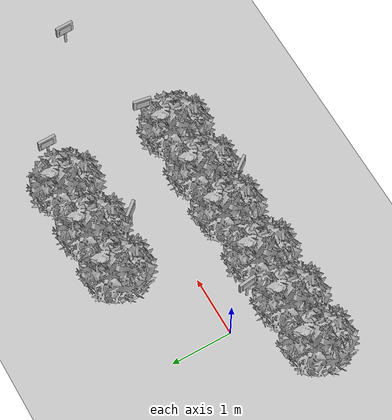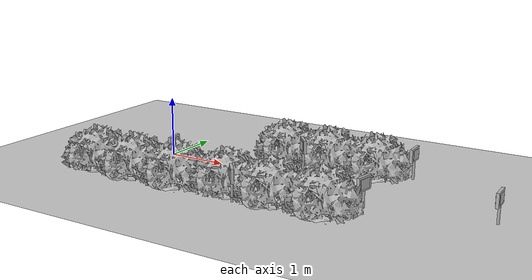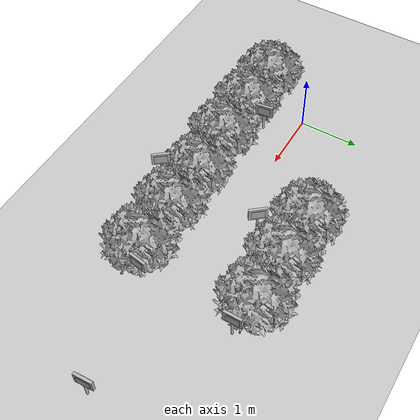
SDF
<sdf version="1.7">
 <world name="default">
  <model name="ground_plane">
   <static>1</static>
   <link name="link">
    <collision name="collision">
     <geometry><plane><normal>0 0 1</normal><size>100 100</size></plane></geometry>
     <surface><friction><ode><mu>100</mu><mu2>50</mu2></ode></friction></surface>
    </collision>
    <visual name="visual">
     <cast_shadows>0</cast_shadows>
     <geometry><plane><normal>0 0 1</normal><size>100 100</size></plane></geometry>
     <material>
      <script><uri>file://media/materials/scripts/gazebo.material</uri><name>Gazebo/Grey</name></script>
     </material>
    </visual>
   </link>
  </model>
  <model name="abbfre_0">
   <link name="link_0">
    <inertial>
     <mass>1</mass>
     <inertia>
      <ixx>0.166667</ixx>
      <ixy>0</ixy>
      <ixz>0</ixz>
      <iyy>0.166667</iyy>
      <iyz>0</iyz>
      <izz>0.166667</izz>
     </inertia>
    </inertial>
    <pose>0 0 -0 1.60917 -0 0</pose>
    <visual name="visual">
     <geometry><mesh><uri>model://abbfre/meshes/arbufres.obj</uri><scale>1 1 1</scale></mesh></geometry>
    </visual>
    <collision name="collision">
     <geometry><mesh><uri>model://abbfre/meshes/arbufres.obj</uri><scale>1 1 1</scale></mesh></geometry>
     <surface>
      <friction>
       <ode><mu>1</mu><mu2>1</mu2><fdir1>0 0 0</fdir1><slip1>0</slip1><slip2>0</slip2></ode>
       <torsional>
        <coefficient>1</coefficient>
        <patch_radius>0</patch_radius>
        <surface_radius>0</surface_radius>
        <use_patch_radius>1</use_patch_radius>
        <ode><slip>0</slip></ode>
       </torsional>
      </friction>
      <bounce><restitution_coefficient>0</restitution_coefficient><threshold>1e+06</threshold></bounce>
      <contact>
       <collide_without_contact>0</collide_without_contact>
       <collide_without_contact_bitmask>1</collide_without_contact_bitmask>
       <collide_bitmask>1</collide_bitmask>
       <ode>
        <soft_cfm>0</soft_cfm>
        <soft_erp>0.2</soft_erp>
        <kp>1e+13</kp>
        <kd>1</kd>
        <max_vel>0.01</max_vel>
        <min_depth>0</min_depth>
       </ode>
       <bullet>
        <split_impulse>1</split_impulse>
        <split_impulse_penetration_threshold>-0.01</split_impulse_penetration_threshold>
        <soft_cfm>0</soft_cfm>
        <soft_erp>0.2</soft_erp>
        <kp>1e+13</kp>
        <kd>1</kd>
       </bullet>
      </contact>
     </surface>
    </collision>
   </link>
   <static>1</static>
   <pose>2.57031 1.10101 0 0 -0 0</pose>
  </model>
  <model name="abbfre_2">
   <link name="link_0">
    <inertial>
     <mass>1</mass>
     <inertia>
      <ixx>0.166667</ixx>
      <ixy>0</ixy>
      <ixz>0</ixz>
      <iyy>0.166667</iyy>
      <iyz>0</iyz>
      <izz>0.166667</izz>
     </inertia>
    </inertial>
    <pose>0 0 -0 1.60917 -0 0</pose>
    <visual name="visual">
     <geometry><mesh><uri>model://abbfre/meshes/arbufres.obj</uri><scale>1 1 1</scale></mesh></geometry>
    </visual>
    <collision name="collision">
     <geometry><mesh><uri>model://abbfre/meshes/arbufres.obj</uri><scale>1 1 1</scale></mesh></geometry>
     <surface>
      <friction>
       <ode><mu>1</mu><mu2>1</mu2><fdir1>0 0 0</fdir1><slip1>0</slip1><slip2>0</slip2></ode>
       <torsional>
        <coefficient>1</coefficient>
        <patch_radius>0</patch_radius>
        <surface_radius>0</surface_radius>
        <use_patch_radius>1</use_patch_radius>
        <ode><slip>0</slip></ode>
       </torsional>
      </friction>
      <bounce><restitution_coefficient>0</restitution_coefficient><threshold>1e+06</threshold></bounce>
      <contact>
       <collide_without_contact>0</collide_without_contact>
       <collide_without_contact_bitmask>1</collide_without_contact_bitmask>
       <collide_bitmask>1</collide_bitmask>
       <ode>
        <soft_cfm>0</soft_cfm>
        <soft_erp>0.2</soft_erp>
        <kp>1e+13</kp>
        <kd>1</kd>
        <max_vel>0.01</max_vel>
        <min_depth>0</min_depth>
       </ode>
       <bullet>
        <split_impulse>1</split_impulse>
        <split_impulse_penetration_threshold>-0.01</split_impulse_penetration_threshold>
        <soft_cfm>0</soft_cfm>
        <soft_erp>0.2</soft_erp>
        <kp>1e+13</kp>
        <kd>1</kd>
       </bullet>
      </contact>
     </surface>
    </collision>
   </link>
   <static>1</static>
   <pose>0.065433 -0.946013 0 0 -0 0</pose>
  </model>
  <model name="abbfre_4">
   <link name="link_0">
    <inertial>
     <mass>1</mass>
     <inertia>
      <ixx>0.166667</ixx>
      <ixy>0</ixy>
      <ixz>0</ixz>
      <iyy>0.166667</iyy>
      <iyz>0</iyz>
      <izz>0.166667</izz>
     </inertia>
    </inertial>
    <pose>0 0 -0 1.60917 -0 0</pose>
    <visual name="visual">
     <geometry><mesh><uri>model://abbfre/meshes/arbufres.obj</uri><scale>1 1 1</scale></mesh></geometry>
    </visual>
    <collision name="collision">
     <geometry><mesh><uri>model://abbfre/meshes/arbufres.obj</uri><scale>1 1 1</scale></mesh></geometry>
     <surface>
      <friction>
       <ode><mu>1</mu><mu2>1</mu2><fdir1>0 0 0</fdir1><slip1>0</slip1><slip2>0</slip2></ode>
       <torsional>
        <coefficient>1</coefficient>
        <patch_radius>0</patch_radius>
        <surface_radius>0</surface_radius>
        <use_patch_radius>1</use_patch_radius>
        <ode><slip>0</slip></ode>
       </torsional>
      </friction>
      <bounce><restitution_coefficient>0</restitution_coefficient><threshold>1e+06</threshold></bounce>
      <contact>
       <collide_without_contact>0</collide_without_contact>
       <collide_without_contact_bitmask>1</collide_without_contact_bitmask>
       <collide_bitmask>1</collide_bitmask>
       <ode>
        <soft_cfm>0</soft_cfm>
        <soft_erp>0.2</soft_erp>
        <kp>1e+13</kp>
        <kd>1</kd>
        <max_vel>0.01</max_vel>
        <min_depth>0</min_depth>
       </ode>
       <bullet>
        <split_impulse>1</split_impulse>
        <split_impulse_penetration_threshold>-0.01</split_impulse_penetration_threshold>
        <soft_cfm>0</soft_cfm>
        <soft_erp>0.2</soft_erp>
        <kp>1e+13</kp>
        <kd>1</kd>
       </bullet>
      </contact>
     </surface>
    </collision>
   </link>
   <static>1</static>
   <pose>2.62048 -0.87774 0 0 -0 0</pose>
  </model>
  <model name="letrero_riego">
   <link name="link_0">
    <inertial>
     <mass>0.0543151</mass>
     <inertia>
      <ixx>4.90351e-06</ixx>
      <ixy>0</ixy>
      <ixz>0</ixz>
      <iyy>4.90351e-06</iyy>
      <iyz>0</iyz>
      <izz>1.12837e-07</izz>
     </inertia>
    </inertial>
    <pose>0.002515 0.005109 0.153562 0 -0 0</pose>
    <visual name="visual">
     <geometry><cylinder><radius>0.0203836</radius><length>0.327243</length></cylinder></geometry>
     <material>
      <lighting>1</lighting>
      <script>
       <uri>model://letrero_riego/madera/scripts</uri>
       <uri>model://letrero_riego/madera/textures</uri>
       <name>textur/madera</name>
      </script>
      <shader type="pixel"/>
      <emissive>0 0 0 1</emissive>
     </material>
    </visual>
    <collision name="collision">
     <geometry><cylinder><radius>0.020384</radius><length>0.327243</length></cylinder></geometry>
     <surface>
      <friction>
       <ode><mu>1</mu><mu2>1</mu2><fdir1>0 0 0</fdir1><slip1>0</slip1><slip2>0</slip2></ode>
       <torsional>
        <coefficient>1</coefficient>
        <patch_radius>0</patch_radius>
        <surface_radius>0</surface_radius>
        <use_patch_radius>1</use_patch_radius>
        <ode><slip>0</slip></ode>
       </torsional>
      </friction>
      <bounce><restitution_coefficient>0</restitution_coefficient><threshold>1e+06</threshold></bounce>
      <contact>
       <collide_without_contact>0</collide_without_contact>
       <collide_without_contact_bitmask>1</collide_without_contact_bitmask>
       <collide_bitmask>1</collide_bitmask>
       <ode>
        <soft_cfm>0</soft_cfm>
        <soft_erp>0.2</soft_erp>
        <kp>1e+13</kp>
        <kd>1</kd>
        <max_vel>0.01</max_vel>
        <min_depth>0</min_depth>
       </ode>
       <bullet>
        <split_impulse>1</split_impulse>
        <split_impulse_penetration_threshold>-0.01</split_impulse_penetration_threshold>
        <soft_cfm>0</soft_cfm>
        <soft_erp>0.2</soft_erp>
        <kp>1e+13</kp>
        <kd>1</kd>
       </bullet>
      </contact>
     </surface>
    </collision>
   </link>
   <link name="link_1">
    <inertial>
     <mass>0.00299633</mass>
     <inertia>
      <ixx>1.27855e-05</ixx>
      <ixy>0</ixy>
      <ixz>0</ixz>
      <iyy>3.42923e-05</iyy>
      <iyz>0</iyz>
      <izz>2.25402e-05</izz>
     </inertia>
    </inertial>
    <pose>-0.001542 0.002452 0.422031 0 -0 0</pose>
    <visual name="visual">
     <geometry><box><size>0.296988 0.04549 0.221665</size></box></geometry>
     <material>
      <lighting>1</lighting>
      <script>
       <uri>model://letrero_riego/madera/scripts</uri>
       <uri>model://letrero_riego/madera/textures</uri>
       <name>textur/madera</name>
      </script>
      <shader type="pixel"/>
      <emissive>0 0 0 1</emissive>
     </material>
    </visual>
    <collision name="collision">
     <geometry><box><size>0.296988 0.04549 0.221665</size></box></geometry>
     <surface>
      <friction>
       <ode><mu>1</mu><mu2>1</mu2><fdir1>0 0 0</fdir1><slip1>0</slip1><slip2>0</slip2></ode>
       <torsional>
        <coefficient>1</coefficient>
        <patch_radius>0</patch_radius>
        <surface_radius>0</surface_radius>
        <use_patch_radius>1</use_patch_radius>
        <ode><slip>0</slip></ode>
       </torsional>
      </friction>
      <bounce><restitution_coefficient>0</restitution_coefficient><threshold>1e+06</threshold></bounce>
      <contact>
       <collide_without_contact>0</collide_without_contact>
       <collide_without_contact_bitmask>1</collide_without_contact_bitmask>
       <collide_bitmask>1</collide_bitmask>
       <ode>
        <soft_cfm>0</soft_cfm>
        <soft_erp>0.2</soft_erp>
        <kp>1e+13</kp>
        <kd>1</kd>
        <max_vel>0.01</max_vel>
        <min_depth>0</min_depth>
       </ode>
       <bullet>
        <split_impulse>1</split_impulse>
        <split_impulse_penetration_threshold>-0.01</split_impulse_penetration_threshold>
        <soft_cfm>0</soft_cfm>
        <soft_erp>0.2</soft_erp>
        <kp>1e+13</kp>
        <kd>1</kd>
       </bullet>
      </contact>
     </surface>
    </collision>
   </link>
   <link name="link_2">
    <inertial>
     <mass>0.00173577</mass>
     <inertia>
      <ixx>4.23206e-06</ixx>
      <ixy>0</ixy>
      <ixz>0</ixz>
      <iyy>1.03921e-05</iyy>
      <iyz>0</iyz>
      <izz>7.37287e-06</izz>
     </inertia>
    </inertial>
    <pose>-0.010225 0.002657 0.421501 0 -0 0</pose>
    <visual name="visual">
     <geometry><box><size>0.216284 0.064749 0.15832</size></box></geometry>
     <material>
      <lighting>1</lighting>
      <script>
       <uri>model://letrero_riego/materials/scripts</uri>
       <uri>model://letrero_riego/materials/textures</uri>
       <name>textur/riego</name>
      </script>
      <shader type="pixel"/>
      <emissive>0 0 0 1</emissive>
     </material>
    </visual>
    <collision name="collision">
     <geometry><box><size>0.216284 0.064749 0.15832</size></box></geometry>
     <surface>
      <friction>
       <ode><mu>1</mu><mu2>1</mu2><fdir1>0 0 0</fdir1><slip1>0</slip1><slip2>0</slip2></ode>
       <torsional>
        <coefficient>1</coefficient>
        <patch_radius>0</patch_radius>
        <surface_radius>0</surface_radius>
        <use_patch_radius>1</use_patch_radius>
        <ode><slip>0</slip></ode>
       </torsional>
      </friction>
      <bounce><restitution_coefficient>0</restitution_coefficient><threshold>1e+06</threshold></bounce>
      <contact>
       <collide_without_contact>0</collide_without_contact>
       <collide_without_contact_bitmask>1</collide_without_contact_bitmask>
       <collide_bitmask>1</collide_bitmask>
       <ode>
        <soft_cfm>0</soft_cfm>
        <soft_erp>0.2</soft_erp>
        <kp>1e+13</kp>
        <kd>1</kd>
        <max_vel>0.01</max_vel>
        <min_depth>0</min_depth>
       </ode>
       <bullet>
        <split_impulse>1</split_impulse>
        <split_impulse_penetration_threshold>-0.01</split_impulse_penetration_threshold>
        <soft_cfm>0</soft_cfm>
        <soft_erp>0.2</soft_erp>
        <kp>1e+13</kp>
        <kd>1</kd>
       </bullet>
      </contact>
     </surface>
    </collision>
   </link>
   <joint name="link_0_JOINT_1" type="fixed">
    <parent>link_0</parent>
    <child>link_1</child>
    <physics>
     <ode><limit><cfm>0</cfm><erp>0.2</erp></limit><suspension><cfm>0</cfm><erp>0.2</erp></suspension></ode>
    </physics>
   </joint>
   <joint name="link_0_JOINT_2" type="fixed">
    <parent>link_0</parent>
    <child>link_2</child>
    <physics>
     <ode><limit><cfm>0</cfm><erp>0.2</erp></limit><suspension><cfm>0</cfm><erp>0.2</erp></suspension></ode>
    </physics>
   </joint>
   <static>1</static>
   <pose>3.93018 -0.662808 -0.049872 0 -0 1.41446</pose>
  </model>
  <model name="letrero_fresa">
   <link name="link_0">
    <inertial>
     <mass>0.00543151</mass>
     <inertia>
      <ixx>4.90351e-06</ixx>
      <ixy>0</ixy>
      <ixz>0</ixz>
      <iyy>4.90351e-06</iyy>
      <iyz>0</iyz>
      <izz>1.12837e-07</izz>
     </inertia>
    </inertial>
    <pose>0.002372 -0.000902 -0.178803 0 -0 0</pose>
    <visual name="visual">
     <geometry><cylinder><radius>0.0203836</radius><length>0.327243</length></cylinder></geometry>
     <material>
      <lighting>1</lighting>
      <script>
       <uri>model://letrero_fresa/madera/scripts</uri>
       <uri>model://letrero_fresa/madera/textures</uri>
       <name>textur/madera</name>
      </script>
      <shader type="pixel"/>
      <emissive>0 0 0 1</emissive>
     </material>
    </visual>
    <collision name="collision">
     <geometry><cylinder><radius>0.020384</radius><length>0.327243</length></cylinder></geometry>
     <surface>
      <friction>
       <ode><mu>1</mu><mu2>1</mu2><fdir1>0 0 0</fdir1><slip1>0</slip1><slip2>0</slip2></ode>
       <torsional>
        <coefficient>1</coefficient>
        <patch_radius>0</patch_radius>
        <surface_radius>0</surface_radius>
        <use_patch_radius>1</use_patch_radius>
        <ode><slip>0</slip></ode>
       </torsional>
      </friction>
      <bounce><restitution_coefficient>0</restitution_coefficient><threshold>1e+06</threshold></bounce>
      <contact>
       <collide_without_contact>0</collide_without_contact>
       <collide_without_contact_bitmask>1</collide_without_contact_bitmask>
       <collide_bitmask>1</collide_bitmask>
       <ode>
        <soft_cfm>0</soft_cfm>
        <soft_erp>0.2</soft_erp>
        <kp>1e+13</kp>
        <kd>1</kd>
        <max_vel>0.01</max_vel>
        <min_depth>0</min_depth>
       </ode>
       <bullet>
        <split_impulse>1</split_impulse>
        <split_impulse_penetration_threshold>-0.01</split_impulse_penetration_threshold>
        <soft_cfm>0</soft_cfm>
        <soft_erp>0.2</soft_erp>
        <kp>1e+13</kp>
        <kd>1</kd>
       </bullet>
      </contact>
     </surface>
    </collision>
   </link>
   <link name="link_1">
    <inertial>
     <mass>0.00299633</mass>
     <inertia>
      <ixx>1.27855e-05</ixx>
      <ixy>0</ixy>
      <ixz>0</ixz>
      <iyy>3.42923e-05</iyy>
      <iyz>0</iyz>
      <izz>2.25402e-05</izz>
     </inertia>
    </inertial>
    <pose>-0.001685 -0.003559 0.089666 0 -0 0</pose>
    <visual name="visual">
     <geometry><box><size>0.296988 0.04549 0.221665</size></box></geometry>
     <material>
      <lighting>1</lighting>
      <script>
       <uri>model://letrero_fresa/madera/scripts</uri>
       <uri>model://letrero_fresa/madera/textures</uri>
       <name>textur/madera</name>
      </script>
      <shader type="pixel"/>
      <emissive>0 0 0 1</emissive>
     </material>
    </visual>
    <collision name="collision">
     <geometry><box><size>0.296988 0.04549 0.221665</size></box></geometry>
     <surface>
      <friction>
       <ode><mu>1</mu><mu2>1</mu2><fdir1>0 0 0</fdir1><slip1>0</slip1><slip2>0</slip2></ode>
       <torsional>
        <coefficient>1</coefficient>
        <patch_radius>0</patch_radius>
        <surface_radius>0</surface_radius>
        <use_patch_radius>1</use_patch_radius>
        <ode><slip>0</slip></ode>
       </torsional>
      </friction>
      <bounce><restitution_coefficient>0</restitution_coefficient><threshold>1e+06</threshold></bounce>
      <contact>
       <collide_without_contact>0</collide_without_contact>
       <collide_without_contact_bitmask>1</collide_without_contact_bitmask>
       <collide_bitmask>1</collide_bitmask>
       <ode>
        <soft_cfm>0</soft_cfm>
        <soft_erp>0.2</soft_erp>
        <kp>1e+13</kp>
        <kd>1</kd>
        <max_vel>0.01</max_vel>
        <min_depth>0</min_depth>
       </ode>
       <bullet>
        <split_impulse>1</split_impulse>
        <split_impulse_penetration_threshold>-0.01</split_impulse_penetration_threshold>
        <soft_cfm>0</soft_cfm>
        <soft_erp>0.2</soft_erp>
        <kp>1e+13</kp>
        <kd>1</kd>
       </bullet>
      </contact>
     </surface>
    </collision>
   </link>
   <link name="link_2">
    <inertial>
     <mass>0.00219695</mass>
     <inertia>
      <ixx>5.34209e-06</ixx>
      <ixy>0</ixy>
      <ixz>0</ixz>
      <iyy>1.31531e-05</iyy>
      <iyz>0</iyz>
      <izz>9.31738e-06</izz>
     </inertia>
    </inertial>
    <pose>-0.001275 -0.005928 0.089136 0 -0 0</pose>
    <visual name="visual">
     <geometry><box><size>0.216284 0.06414 0.15832</size></box></geometry>
     <material>
      <lighting>1</lighting>
      <script>
       <uri>model://letrero_fresa/materials/scripts</uri>
       <uri>model://letrero_fresa/materials/textures</uri>
       <name>textur/difre</name>
      </script>
      <shader type="pixel"/>
      <emissive>0 0 0 1</emissive>
     </material>
    </visual>
    <collision name="collision">
     <geometry><box><size>0.216284 0.06414 0.15832</size></box></geometry>
     <surface>
      <friction>
       <ode><mu>1</mu><mu2>1</mu2><fdir1>0 0 0</fdir1><slip1>0</slip1><slip2>0</slip2></ode>
       <torsional>
        <coefficient>1</coefficient>
        <patch_radius>0</patch_radius>
        <surface_radius>0</surface_radius>
        <use_patch_radius>1</use_patch_radius>
        <ode><slip>0</slip></ode>
       </torsional>
      </friction>
      <bounce><restitution_coefficient>0</restitution_coefficient><threshold>1e+06</threshold></bounce>
      <contact>
       <collide_without_contact>0</collide_without_contact>
       <collide_without_contact_bitmask>1</collide_without_contact_bitmask>
       <collide_bitmask>1</collide_bitmask>
       <ode>
        <soft_cfm>0</soft_cfm>
        <soft_erp>0.2</soft_erp>
        <kp>1e+13</kp>
        <kd>1</kd>
        <max_vel>0.01</max_vel>
        <min_depth>0</min_depth>
       </ode>
       <bullet>
        <split_impulse>1</split_impulse>
        <split_impulse_penetration_threshold>-0.01</split_impulse_penetration_threshold>
        <soft_cfm>0</soft_cfm>
        <soft_erp>0.2</soft_erp>
        <kp>1e+13</kp>
        <kd>1</kd>
       </bullet>
      </contact>
     </surface>
    </collision>
   </link>
   <joint name="link_0_JOINT_1" type="fixed">
    <parent>link_0</parent>
    <child>link_1</child>
    <physics>
     <ode><limit><cfm>0</cfm><erp>0.2</erp></limit><suspension><cfm>0</cfm><erp>0.2</erp></suspension></ode>
    </physics>
   </joint>
   <joint name="link_0_JOINT_2" type="fixed">
    <parent>link_0</parent>
    <child>link_2</child>
    <physics>
     <ode><limit><cfm>0</cfm><erp>0.2</erp></limit><suspension><cfm>0</cfm><erp>0.2</erp></suspension></ode>
    </physics>
   </joint>
   <static>1</static>
   <pose>2.34438 0.414621 0.339683 0 0 -0.864343</pose>
  </model>
  <model name="letrero_insecto_0">
   <link name="link_0">
    <inertial>
     <mass>0.00543151</mass>
     <inertia>
      <ixx>4.90351e-06</ixx>
      <ixy>0</ixy>
      <ixz>0</ixz>
      <iyy>4.90351e-06</iyy>
      <iyz>0</iyz>
      <izz>1.12837e-07</izz>
     </inertia>
    </inertial>
    <pose>0.002372 -0.000902 -0.178803 0 -0 0</pose>
    <visual name="visual">
     <geometry><cylinder><radius>0.0203836</radius><length>0.327243</length></cylinder></geometry>
     <material>
      <lighting>1</lighting>
      <script>
       <uri>model://letrero_insecto/madera/scripts</uri>
       <uri>model://letrero_insecto/madera/textures</uri>
       <name>textur/madera</name>
      </script>
      <shader type="pixel"/>
      <emissive>0 0 0 1</emissive>
     </material>
    </visual>
    <collision name="collision">
     <geometry><cylinder><radius>0.020384</radius><length>0.327243</length></cylinder></geometry>
     <surface>
      <friction>
       <ode><mu>1</mu><mu2>1</mu2><fdir1>0 0 0</fdir1><slip1>0</slip1><slip2>0</slip2></ode>
       <torsional>
        <coefficient>1</coefficient>
        <patch_radius>0</patch_radius>
        <surface_radius>0</surface_radius>
        <use_patch_radius>1</use_patch_radius>
        <ode><slip>0</slip></ode>
       </torsional>
      </friction>
      <bounce><restitution_coefficient>0</restitution_coefficient><threshold>1e+06</threshold></bounce>
      <contact>
       <collide_without_contact>0</collide_without_contact>
       <collide_without_contact_bitmask>1</collide_without_contact_bitmask>
       <collide_bitmask>1</collide_bitmask>
       <ode>
        <soft_cfm>0</soft_cfm>
        <soft_erp>0.2</soft_erp>
        <kp>1e+13</kp>
        <kd>1</kd>
        <max_vel>0.01</max_vel>
        <min_depth>0</min_depth>
       </ode>
       <bullet>
        <split_impulse>1</split_impulse>
        <split_impulse_penetration_threshold>-0.01</split_impulse_penetration_threshold>
        <soft_cfm>0</soft_cfm>
        <soft_erp>0.2</soft_erp>
        <kp>1e+13</kp>
        <kd>1</kd>
       </bullet>
      </contact>
     </surface>
    </collision>
   </link>
   <link name="link_1">
    <inertial>
     <mass>0.00299633</mass>
     <inertia>
      <ixx>1.27855e-05</ixx>
      <ixy>0</ixy>
      <ixz>0</ixz>
      <iyy>3.42923e-05</iyy>
      <iyz>0</iyz>
      <izz>2.25402e-05</izz>
     </inertia>
    </inertial>
    <pose>-0.001685 -0.003559 0.089666 0 -0 0</pose>
    <visual name="visual">
     <geometry><box><size>0.296988 0.04549 0.221665</size></box></geometry>
     <material>
      <lighting>1</lighting>
      <script>
       <uri>model://letrero_insecto/madera/scripts</uri>
       <uri>model://letrero_insecto/madera/textures</uri>
       <name>textur/madera</name>
      </script>
      <shader type="pixel"/>
      <emissive>0 0 0 1</emissive>
     </material>
    </visual>
    <collision name="collision">
     <geometry><box><size>0.296988 0.04549 0.221665</size></box></geometry>
     <surface>
      <friction>
       <ode><mu>1</mu><mu2>1</mu2><fdir1>0 0 0</fdir1><slip1>0</slip1><slip2>0</slip2></ode>
       <torsional>
        <coefficient>1</coefficient>
        <patch_radius>0</patch_radius>
        <surface_radius>0</surface_radius>
        <use_patch_radius>1</use_patch_radius>
        <ode><slip>0</slip></ode>
       </torsional>
      </friction>
      <bounce><restitution_coefficient>0</restitution_coefficient><threshold>1e+06</threshold></bounce>
      <contact>
       <collide_without_contact>0</collide_without_contact>
       <collide_without_contact_bitmask>1</collide_without_contact_bitmask>
       <collide_bitmask>1</collide_bitmask>
       <ode>
        <soft_cfm>0</soft_cfm>
        <soft_erp>0.2</soft_erp>
        <kp>1e+13</kp>
        <kd>1</kd>
        <max_vel>0.01</max_vel>
        <min_depth>0</min_depth>
       </ode>
       <bullet>
        <split_impulse>1</split_impulse>
        <split_impulse_penetration_threshold>-0.01</split_impulse_penetration_threshold>
        <soft_cfm>0</soft_cfm>
        <soft_erp>0.2</soft_erp>
        <kp>1e+13</kp>
        <kd>1</kd>
       </bullet>
      </contact>
     </surface>
    </collision>
   </link>
   <link name="link_2">
    <inertial>
     <mass>0.00219695</mass>
     <inertia>
      <ixx>5.34209e-06</ixx>
      <ixy>0</ixy>
      <ixz>0</ixz>
      <iyy>1.31531e-05</iyy>
      <iyz>0</iyz>
      <izz>9.31738e-06</izz>
     </inertia>
    </inertial>
    <pose>-0.001275 -0.005928 0.089136 0 -0 0</pose>
    <visual name="visual">
     <geometry><box><size>0.216284 0.06414 0.15832</size></box></geometry>
     <material>
      <lighting>1</lighting>
      <script>
       <uri>model://letrero_insecto/materials/scripts</uri>
       <uri>model://letrero_insecto/materials/textures</uri>
       <name>textur/insec</name>
      </script>
      <shader type="pixel"/>
      <emissive>0 0 0 1</emissive>
     </material>
    </visual>
    <collision name="collision">
     <geometry><box><size>0.216284 0.06414 0.15832</size></box></geometry>
     <surface>
      <friction>
       <ode><mu>1</mu><mu2>1</mu2><fdir1>0 0 0</fdir1><slip1>0</slip1><slip2>0</slip2></ode>
       <torsional>
        <coefficient>1</coefficient>
        <patch_radius>0</patch_radius>
        <surface_radius>0</surface_radius>
        <use_patch_radius>1</use_patch_radius>
        <ode><slip>0</slip></ode>
       </torsional>
      </friction>
      <bounce><restitution_coefficient>0</restitution_coefficient><threshold>1e+06</threshold></bounce>
      <contact>
       <collide_without_contact>0</collide_without_contact>
       <collide_without_contact_bitmask>1</collide_without_contact_bitmask>
       <collide_bitmask>1</collide_bitmask>
       <ode>
        <soft_cfm>0</soft_cfm>
        <soft_erp>0.2</soft_erp>
        <kp>1e+13</kp>
        <kd>1</kd>
        <max_vel>0.01</max_vel>
        <min_depth>0</min_depth>
       </ode>
       <bullet>
        <split_impulse>1</split_impulse>
        <split_impulse_penetration_threshold>-0.01</split_impulse_penetration_threshold>
        <soft_cfm>0</soft_cfm>
        <soft_erp>0.2</soft_erp>
        <kp>1e+13</kp>
        <kd>1</kd>
       </bullet>
      </contact>
     </surface>
    </collision>
   </link>
   <joint name="link_0_JOINT_1" type="fixed">
    <parent>link_0</parent>
    <child>link_1</child>
    <physics>
     <ode><limit><cfm>0</cfm><erp>0.2</erp></limit><suspension><cfm>0</cfm><erp>0.2</erp></suspension></ode>
    </physics>
   </joint>
   <joint name="link_0_JOINT_2" type="fixed">
    <parent>link_0</parent>
    <child>link_2</child>
    <physics>
     <ode><limit><cfm>0</cfm><erp>0.2</erp></limit><suspension><cfm>0</cfm><erp>0.2</erp></suspension></ode>
    </physics>
   </joint>
   <static>1</static>
   <pose>5.74716 -0.239309 0.280927 0 0 -1.52162</pose>
  </model>
  <model name="letrero_fresa_1">
   <link name="link_0">
    <inertial>
     <mass>0.00543151</mass>
     <inertia>
      <ixx>4.90351e-06</ixx>
      <ixy>0</ixy>
      <ixz>0</ixz>
      <iyy>4.90351e-06</iyy>
      <iyz>0</iyz>
      <izz>1.12837e-07</izz>
     </inertia>
    </inertial>
    <pose>0.002372 -0.000902 -0.178803 0 -0 0</pose>
    <visual name="visual">
     <geometry><cylinder><radius>0.0203836</radius><length>0.327243</length></cylinder></geometry>
     <material>
      <lighting>1</lighting>
      <script>
       <uri>model://letrero_fresa/madera/scripts</uri>
       <uri>model://letrero_fresa/madera/textures</uri>
       <name>textur/madera</name>
      </script>
      <shader type="pixel"/>
      <emissive>0 0 0 1</emissive>
     </material>
    </visual>
    <collision name="collision">
     <geometry><cylinder><radius>0.020384</radius><length>0.327243</length></cylinder></geometry>
     <surface>
      <friction>
       <ode><mu>1</mu><mu2>1</mu2><fdir1>0 0 0</fdir1><slip1>0</slip1><slip2>0</slip2></ode>
       <torsional>
        <coefficient>1</coefficient>
        <patch_radius>0</patch_radius>
        <surface_radius>0</surface_radius>
        <use_patch_radius>1</use_patch_radius>
        <ode><slip>0</slip></ode>
       </torsional>
      </friction>
      <bounce><restitution_coefficient>0</restitution_coefficient><threshold>1e+06</threshold></bounce>
      <contact>
       <collide_without_contact>0</collide_without_contact>
       <collide_without_contact_bitmask>1</collide_without_contact_bitmask>
       <collide_bitmask>1</collide_bitmask>
       <ode>
        <soft_cfm>0</soft_cfm>
        <soft_erp>0.2</soft_erp>
        <kp>1e+13</kp>
        <kd>1</kd>
        <max_vel>0.01</max_vel>
        <min_depth>0</min_depth>
       </ode>
       <bullet>
        <split_impulse>1</split_impulse>
        <split_impulse_penetration_threshold>-0.01</split_impulse_penetration_threshold>
        <soft_cfm>0</soft_cfm>
        <soft_erp>0.2</soft_erp>
        <kp>1e+13</kp>
        <kd>1</kd>
       </bullet>
      </contact>
     </surface>
    </collision>
   </link>
   <link name="link_1">
    <inertial>
     <mass>0.00299633</mass>
     <inertia>
      <ixx>1.27855e-05</ixx>
      <ixy>0</ixy>
      <ixz>0</ixz>
      <iyy>3.42923e-05</iyy>
      <iyz>0</iyz>
      <izz>2.25402e-05</izz>
     </inertia>
    </inertial>
    <pose>-0.001685 -0.003559 0.089666 0 -0 0</pose>
    <visual name="visual">
     <geometry><box><size>0.296988 0.04549 0.221665</size></box></geometry>
     <material>
      <lighting>1</lighting>
      <script>
       <uri>model://letrero_fresa/madera/scripts</uri>
       <uri>model://letrero_fresa/madera/textures</uri>
       <name>textur/madera</name>
      </script>
      <shader type="pixel"/>
      <emissive>0 0 0 1</emissive>
     </material>
    </visual>
    <collision name="collision">
     <geometry><box><size>0.296988 0.04549 0.221665</size></box></geometry>
     <surface>
      <friction>
       <ode><mu>1</mu><mu2>1</mu2><fdir1>0 0 0</fdir1><slip1>0</slip1><slip2>0</slip2></ode>
       <torsional>
        <coefficient>1</coefficient>
        <patch_radius>0</patch_radius>
        <surface_radius>0</surface_radius>
        <use_patch_radius>1</use_patch_radius>
        <ode><slip>0</slip></ode>
       </torsional>
      </friction>
      <bounce><restitution_coefficient>0</restitution_coefficient><threshold>1e+06</threshold></bounce>
      <contact>
       <collide_without_contact>0</collide_without_contact>
       <collide_without_contact_bitmask>1</collide_without_contact_bitmask>
       <collide_bitmask>1</collide_bitmask>
       <ode>
        <soft_cfm>0</soft_cfm>
        <soft_erp>0.2</soft_erp>
        <kp>1e+13</kp>
        <kd>1</kd>
        <max_vel>0.01</max_vel>
        <min_depth>0</min_depth>
       </ode>
       <bullet>
        <split_impulse>1</split_impulse>
        <split_impulse_penetration_threshold>-0.01</split_impulse_penetration_threshold>
        <soft_cfm>0</soft_cfm>
        <soft_erp>0.2</soft_erp>
        <kp>1e+13</kp>
        <kd>1</kd>
       </bullet>
      </contact>
     </surface>
    </collision>
   </link>
   <link name="link_2">
    <inertial>
     <mass>0.00219695</mass>
     <inertia>
      <ixx>5.34209e-06</ixx>
      <ixy>0</ixy>
      <ixz>0</ixz>
      <iyy>1.31531e-05</iyy>
      <iyz>0</iyz>
      <izz>9.31738e-06</izz>
     </inertia>
    </inertial>
    <pose>-0.001275 -0.005928 0.089136 0 -0 0</pose>
    <visual name="visual">
     <geometry><box><size>0.216284 0.06414 0.15832</size></box></geometry>
     <material>
      <lighting>1</lighting>
      <script>
       <uri>model://letrero_fresa/materials/scripts</uri>
       <uri>model://letrero_fresa/materials/textures</uri>
       <name>textur/difre</name>
      </script>
      <shader type="pixel"/>
      <emissive>0 0 0 1</emissive>
     </material>
    </visual>
    <collision name="collision">
     <geometry><box><size>0.216284 0.06414 0.15832</size></box></geometry>
     <surface>
      <friction>
       <ode><mu>1</mu><mu2>1</mu2><fdir1>0 0 0</fdir1><slip1>0</slip1><slip2>0</slip2></ode>
       <torsional>
        <coefficient>1</coefficient>
        <patch_radius>0</patch_radius>
        <surface_radius>0</surface_radius>
        <use_patch_radius>1</use_patch_radius>
        <ode><slip>0</slip></ode>
       </torsional>
      </friction>
      <bounce><restitution_coefficient>0</restitution_coefficient><threshold>1e+06</threshold></bounce>
      <contact>
       <collide_without_contact>0</collide_without_contact>
       <collide_without_contact_bitmask>1</collide_without_contact_bitmask>
       <collide_bitmask>1</collide_bitmask>
       <ode>
        <soft_cfm>0</soft_cfm>
        <soft_erp>0.2</soft_erp>
        <kp>1e+13</kp>
        <kd>1</kd>
        <max_vel>0.01</max_vel>
        <min_depth>0</min_depth>
       </ode>
       <bullet>
        <split_impulse>1</split_impulse>
        <split_impulse_penetration_threshold>-0.01</split_impulse_penetration_threshold>
        <soft_cfm>0</soft_cfm>
        <soft_erp>0.2</soft_erp>
        <kp>1e+13</kp>
        <kd>1</kd>
       </bullet>
      </contact>
     </surface>
    </collision>
   </link>
   <joint name="link_0_JOINT_1" type="fixed">
    <parent>link_0</parent>
    <child>link_1</child>
    <physics>
     <ode><limit><cfm>0</cfm><erp>0.2</erp></limit><suspension><cfm>0</cfm><erp>0.2</erp></suspension></ode>
    </physics>
   </joint>
   <joint name="link_0_JOINT_2" type="fixed">
    <parent>link_0</parent>
    <child>link_2</child>
    <physics>
     <ode><limit><cfm>0</cfm><erp>0.2</erp></limit><suspension><cfm>0</cfm><erp>0.2</erp></suspension></ode>
    </physics>
   </joint>
   <static>1</static>
   <pose>2.18394 -1.43972 0.336004 0 0 -0.901705</pose>
  </model>
  <model name="letrero_riego_8">
   <link name="link_0">
    <inertial>
     <mass>0.0543151</mass>
     <inertia>
      <ixx>4.90351e-06</ixx>
      <ixy>0</ixy>
      <ixz>0</ixz>
      <iyy>4.90351e-06</iyy>
      <iyz>0</iyz>
      <izz>1.12837e-07</izz>
     </inertia>
    </inertial>
    <pose>0.002515 0.005109 0.153562 0 -0 0</pose>
    <visual name="visual">
     <geometry><cylinder><radius>0.0203836</radius><length>0.327243</length></cylinder></geometry>
     <material>
      <lighting>1</lighting>
      <script>
       <uri>model://letrero_riego/madera/scripts</uri>
       <uri>model://letrero_riego/madera/textures</uri>
       <name>textur/madera</name>
      </script>
      <shader type="pixel"/>
      <emissive>0 0 0 1</emissive>
     </material>
    </visual>
    <collision name="collision">
     <geometry><cylinder><radius>0.020384</radius><length>0.327243</length></cylinder></geometry>
     <surface>
      <friction>
       <ode><mu>1</mu><mu2>1</mu2><fdir1>0 0 0</fdir1><slip1>0</slip1><slip2>0</slip2></ode>
       <torsional>
        <coefficient>1</coefficient>
        <patch_radius>0</patch_radius>
        <surface_radius>0</surface_radius>
        <use_patch_radius>1</use_patch_radius>
        <ode><slip>0</slip></ode>
       </torsional>
      </friction>
      <bounce><restitution_coefficient>0</restitution_coefficient><threshold>1e+06</threshold></bounce>
      <contact>
       <collide_without_contact>0</collide_without_contact>
       <collide_without_contact_bitmask>1</collide_without_contact_bitmask>
       <collide_bitmask>1</collide_bitmask>
       <ode>
        <soft_cfm>0</soft_cfm>
        <soft_erp>0.2</soft_erp>
        <kp>1e+13</kp>
        <kd>1</kd>
        <max_vel>0.01</max_vel>
        <min_depth>0</min_depth>
       </ode>
       <bullet>
        <split_impulse>1</split_impulse>
        <split_impulse_penetration_threshold>-0.01</split_impulse_penetration_threshold>
        <soft_cfm>0</soft_cfm>
        <soft_erp>0.2</soft_erp>
        <kp>1e+13</kp>
        <kd>1</kd>
       </bullet>
      </contact>
     </surface>
    </collision>
   </link>
   <link name="link_1">
    <inertial>
     <mass>0.00299633</mass>
     <inertia>
      <ixx>1.27855e-05</ixx>
      <ixy>0</ixy>
      <ixz>0</ixz>
      <iyy>3.42923e-05</iyy>
      <iyz>0</iyz>
      <izz>2.25402e-05</izz>
     </inertia>
    </inertial>
    <pose>-0.001542 0.002452 0.422031 0 -0 0</pose>
    <visual name="visual">
     <geometry><box><size>0.296988 0.04549 0.221665</size></box></geometry>
     <material>
      <lighting>1</lighting>
      <script>
       <uri>model://letrero_riego/madera/scripts</uri>
       <uri>model://letrero_riego/madera/textures</uri>
       <name>textur/madera</name>
      </script>
      <shader type="pixel"/>
      <emissive>0 0 0 1</emissive>
     </material>
    </visual>
    <collision name="collision">
     <geometry><box><size>0.296988 0.04549 0.221665</size></box></geometry>
     <surface>
      <friction>
       <ode><mu>1</mu><mu2>1</mu2><fdir1>0 0 0</fdir1><slip1>0</slip1><slip2>0</slip2></ode>
       <torsional>
        <coefficient>1</coefficient>
        <patch_radius>0</patch_radius>
        <surface_radius>0</surface_radius>
        <use_patch_radius>1</use_patch_radius>
        <ode><slip>0</slip></ode>
       </torsional>
      </friction>
      <bounce><restitution_coefficient>0</restitution_coefficient><threshold>1e+06</threshold></bounce>
      <contact>
       <collide_without_contact>0</collide_without_contact>
       <collide_without_contact_bitmask>1</collide_without_contact_bitmask>
       <collide_bitmask>1</collide_bitmask>
       <ode>
        <soft_cfm>0</soft_cfm>
        <soft_erp>0.2</soft_erp>
        <kp>1e+13</kp>
        <kd>1</kd>
        <max_vel>0.01</max_vel>
        <min_depth>0</min_depth>
       </ode>
       <bullet>
        <split_impulse>1</split_impulse>
        <split_impulse_penetration_threshold>-0.01</split_impulse_penetration_threshold>
        <soft_cfm>0</soft_cfm>
        <soft_erp>0.2</soft_erp>
        <kp>1e+13</kp>
        <kd>1</kd>
       </bullet>
      </contact>
     </surface>
    </collision>
   </link>
   <link name="link_2">
    <inertial>
     <mass>0.00173577</mass>
     <inertia>
      <ixx>4.23206e-06</ixx>
      <ixy>0</ixy>
      <ixz>0</ixz>
      <iyy>1.03921e-05</iyy>
      <iyz>0</iyz>
      <izz>7.37287e-06</izz>
     </inertia>
    </inertial>
    <pose>-0.010225 0.002657 0.421501 0 -0 0</pose>
    <visual name="visual">
     <geometry><box><size>0.216284 0.064749 0.15832</size></box></geometry>
     <material>
      <lighting>1</lighting>
      <script>
       <uri>model://letrero_riego/materials/scripts</uri>
       <uri>model://letrero_riego/materials/textures</uri>
       <name>textur/riego</name>
      </script>
      <shader type="pixel"/>
      <emissive>0 0 0 1</emissive>
     </material>
    </visual>
    <collision name="collision">
     <geometry><box><size>0.216284 0.064749 0.15832</size></box></geometry>
     <surface>
      <friction>
       <ode><mu>1</mu><mu2>1</mu2><fdir1>0 0 0</fdir1><slip1>0</slip1><slip2>0</slip2></ode>
       <torsional>
        <coefficient>1</coefficient>
        <patch_radius>0</patch_radius>
        <surface_radius>0</surface_radius>
        <use_patch_radius>1</use_patch_radius>
        <ode><slip>0</slip></ode>
       </torsional>
      </friction>
      <bounce><restitution_coefficient>0</restitution_coefficient><threshold>1e+06</threshold></bounce>
      <contact>
       <collide_without_contact>0</collide_without_contact>
       <collide_without_contact_bitmask>1</collide_without_contact_bitmask>
       <collide_bitmask>1</collide_bitmask>
       <ode>
        <soft_cfm>0</soft_cfm>
        <soft_erp>0.2</soft_erp>
        <kp>1e+13</kp>
        <kd>1</kd>
        <max_vel>0.01</max_vel>
        <min_depth>0</min_depth>
       </ode>
       <bullet>
        <split_impulse>1</split_impulse>
        <split_impulse_penetration_threshold>-0.01</split_impulse_penetration_threshold>
        <soft_cfm>0</soft_cfm>
        <soft_erp>0.2</soft_erp>
        <kp>1e+13</kp>
        <kd>1</kd>
       </bullet>
      </contact>
     </surface>
    </collision>
   </link>
   <joint name="link_0_JOINT_1" type="fixed">
    <parent>link_0</parent>
    <child>link_1</child>
    <physics>
     <ode><limit><cfm>0</cfm><erp>0.2</erp></limit><suspension><cfm>0</cfm><erp>0.2</erp></suspension></ode>
    </physics>
   </joint>
   <joint name="link_0_JOINT_2" type="fixed">
    <parent>link_0</parent>
    <child>link_2</child>
    <physics>
     <ode><limit><cfm>0</cfm><erp>0.2</erp></limit><suspension><cfm>0</cfm><erp>0.2</erp></suspension></ode>
    </physics>
   </joint>
   <static>1</static>
   <pose>4.0276 0.968037 -0.017195 0 0 -1.54973</pose>
  </model>
  <model name="letrero_fresa_11">
   <link name="link_0">
    <inertial>
     <mass>0.00543151</mass>
     <inertia>
      <ixx>4.90351e-06</ixx>
      <ixy>0</ixy>
      <ixz>0</ixz>
      <iyy>4.90351e-06</iyy>
      <iyz>0</iyz>
      <izz>1.12837e-07</izz>
     </inertia>
    </inertial>
    <pose>0.002372 -0.000902 -0.178803 0 -0 0</pose>
    <visual name="visual">
     <geometry><cylinder><radius>0.0203836</radius><length>0.327243</length></cylinder></geometry>
     <material>
      <lighting>1</lighting>
      <script>
       <uri>model://letrero_fresa/madera/scripts</uri>
       <uri>model://letrero_fresa/madera/textures</uri>
       <name>textur/madera</name>
      </script>
      <shader type="pixel"/>
      <emissive>0 0 0 1</emissive>
     </material>
    </visual>
    <collision name="collision">
     <geometry><cylinder><radius>0.020384</radius><length>0.327243</length></cylinder></geometry>
     <surface>
      <friction>
       <ode><mu>1</mu><mu2>1</mu2><fdir1>0 0 0</fdir1><slip1>0</slip1><slip2>0</slip2></ode>
       <torsional>
        <coefficient>1</coefficient>
        <patch_radius>0</patch_radius>
        <surface_radius>0</surface_radius>
        <use_patch_radius>1</use_patch_radius>
        <ode><slip>0</slip></ode>
       </torsional>
      </friction>
      <bounce><restitution_coefficient>0</restitution_coefficient><threshold>1e+06</threshold></bounce>
      <contact>
       <collide_without_contact>0</collide_without_contact>
       <collide_without_contact_bitmask>1</collide_without_contact_bitmask>
       <collide_bitmask>1</collide_bitmask>
       <ode>
        <soft_cfm>0</soft_cfm>
        <soft_erp>0.2</soft_erp>
        <kp>1e+13</kp>
        <kd>1</kd>
        <max_vel>0.01</max_vel>
        <min_depth>0</min_depth>
       </ode>
       <bullet>
        <split_impulse>1</split_impulse>
        <split_impulse_penetration_threshold>-0.01</split_impulse_penetration_threshold>
        <soft_cfm>0</soft_cfm>
        <soft_erp>0.2</soft_erp>
        <kp>1e+13</kp>
        <kd>1</kd>
       </bullet>
      </contact>
     </surface>
    </collision>
   </link>
   <link name="link_1">
    <inertial>
     <mass>0.00299633</mass>
     <inertia>
      <ixx>1.27855e-05</ixx>
      <ixy>0</ixy>
      <ixz>0</ixz>
      <iyy>3.42923e-05</iyy>
      <iyz>0</iyz>
      <izz>2.25402e-05</izz>
     </inertia>
    </inertial>
    <pose>-0.001685 -0.003559 0.089666 0 -0 0</pose>
    <visual name="visual">
     <geometry><box><size>0.296988 0.04549 0.221665</size></box></geometry>
     <material>
      <lighting>1</lighting>
      <script>
       <uri>model://letrero_fresa/madera/scripts</uri>
       <uri>model://letrero_fresa/madera/textures</uri>
       <name>textur/madera</name>
      </script>
      <shader type="pixel"/>
      <emissive>0 0 0 1</emissive>
     </material>
    </visual>
    <collision name="collision">
     <geometry><box><size>0.296988 0.04549 0.221665</size></box></geometry>
     <surface>
      <friction>
       <ode><mu>1</mu><mu2>1</mu2><fdir1>0 0 0</fdir1><slip1>0</slip1><slip2>0</slip2></ode>
       <torsional>
        <coefficient>1</coefficient>
        <patch_radius>0</patch_radius>
        <surface_radius>0</surface_radius>
        <use_patch_radius>1</use_patch_radius>
        <ode><slip>0</slip></ode>
       </torsional>
      </friction>
      <bounce><restitution_coefficient>0</restitution_coefficient><threshold>1e+06</threshold></bounce>
      <contact>
       <collide_without_contact>0</collide_without_contact>
       <collide_without_contact_bitmask>1</collide_without_contact_bitmask>
       <collide_bitmask>1</collide_bitmask>
       <ode>
        <soft_cfm>0</soft_cfm>
        <soft_erp>0.2</soft_erp>
        <kp>1e+13</kp>
        <kd>1</kd>
        <max_vel>0.01</max_vel>
        <min_depth>0</min_depth>
       </ode>
       <bullet>
        <split_impulse>1</split_impulse>
        <split_impulse_penetration_threshold>-0.01</split_impulse_penetration_threshold>
        <soft_cfm>0</soft_cfm>
        <soft_erp>0.2</soft_erp>
        <kp>1e+13</kp>
        <kd>1</kd>
       </bullet>
      </contact>
     </surface>
    </collision>
   </link>
   <link name="link_2">
    <inertial>
     <mass>0.00219695</mass>
     <inertia>
      <ixx>5.34209e-06</ixx>
      <ixy>0</ixy>
      <ixz>0</ixz>
      <iyy>1.31531e-05</iyy>
      <iyz>0</iyz>
      <izz>9.31738e-06</izz>
     </inertia>
    </inertial>
    <pose>-0.001275 -0.005928 0.089136 0 -0 0</pose>
    <visual name="visual">
     <geometry><box><size>0.216284 0.06414 0.15832</size></box></geometry>
     <material>
      <lighting>1</lighting>
      <script>
       <uri>model://letrero_fresa/materials/scripts</uri>
       <uri>model://letrero_fresa/materials/textures</uri>
       <name>textur/difre</name>
      </script>
      <shader type="pixel"/>
      <emissive>0 0 0 1</emissive>
     </material>
    </visual>
    <collision name="collision">
     <geometry><box><size>0.216284 0.06414 0.15832</size></box></geometry>
     <surface>
      <friction>
       <ode><mu>1</mu><mu2>1</mu2><fdir1>0 0 0</fdir1><slip1>0</slip1><slip2>0</slip2></ode>
       <torsional>
        <coefficient>1</coefficient>
        <patch_radius>0</patch_radius>
        <surface_radius>0</surface_radius>
        <use_patch_radius>1</use_patch_radius>
        <ode><slip>0</slip></ode>
       </torsional>
      </friction>
      <bounce><restitution_coefficient>0</restitution_coefficient><threshold>1e+06</threshold></bounce>
      <contact>
       <collide_without_contact>0</collide_without_contact>
       <collide_without_contact_bitmask>1</collide_without_contact_bitmask>
       <collide_bitmask>1</collide_bitmask>
       <ode>
        <soft_cfm>0</soft_cfm>
        <soft_erp>0.2</soft_erp>
        <kp>1e+13</kp>
        <kd>1</kd>
        <max_vel>0.01</max_vel>
        <min_depth>0</min_depth>
       </ode>
       <bullet>
        <split_impulse>1</split_impulse>
        <split_impulse_penetration_threshold>-0.01</split_impulse_penetration_threshold>
        <soft_cfm>0</soft_cfm>
        <soft_erp>0.2</soft_erp>
        <kp>1e+13</kp>
        <kd>1</kd>
       </bullet>
      </contact>
     </surface>
    </collision>
   </link>
   <joint name="link_0_JOINT_1" type="fixed">
    <parent>link_0</parent>
    <child>link_1</child>
    <physics>
     <ode><limit><cfm>0</cfm><erp>0.2</erp></limit><suspension><cfm>0</cfm><erp>0.2</erp></suspension></ode>
    </physics>
   </joint>
   <joint name="link_0_JOINT_2" type="fixed">
    <parent>link_0</parent>
    <child>link_2</child>
    <physics>
     <ode><limit><cfm>0</cfm><erp>0.2</erp></limit><suspension><cfm>0</cfm><erp>0.2</erp></suspension></ode>
    </physics>
   </joint>
   <static>1</static>
   <pose>0.430182 -0.533571 0.32885 0 0 -1.43025</pose>
  </model>
 </world>
</sdf>
